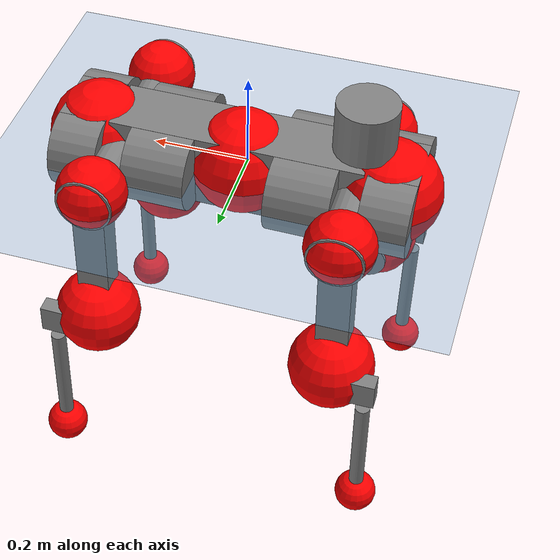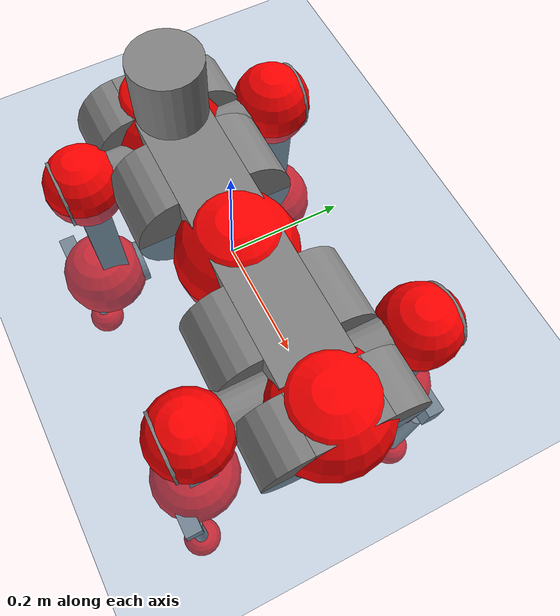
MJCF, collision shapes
<mujoco model="anymal_c">
  <compiler angle="radian" assetdir="assets" balanceinertia="true" inertiafromgeom="false"/>

  <option timestep="0.005" density="1.2" viscosity="2e-05"/>

  <size nkey="1"/>

  <visual>
    <quality shadowsize="8192"/>
    <map shadowclip="0.5"/>
  </visual>

  <default>
    <default class="/">
      <material specular="0" shininess="0.25"/>
      <geom contype="0" conaffinity="0" group="1" solref="-1000 -80"/>
      <site size="0.01 0.005 0.005" group="5"/>
      <general forcelimited="true" forcerange="-80 80" biastype="affine" gainprm="80" biasprm="0 -80 -2"/>
      <default class="anymal_c">
        <joint armature="0.01" damping="0.01" frictionloss="0.1"/>
        <default class="visual">
          <geom type="mesh" group="2"/>
          <default class="visual_zflip"/>
        </default>
        <default class="collision">
          <geom type="cylinder" group="3"/>
          <default class="foot">
            <geom size="0.03 0 0" type="sphere" condim="6" priority="1" friction="0.8 0.02 0.01" solimp="0.015 1 0.03"/>
          </default>
        </default>
      </default>
      <default class="reward_collision_sphere">
        <geom group="5" rgba="1 0 0 1"/>
      </default>
    </default>
  </default>

  <asset>
    <texture type="skybox" colorspace="auto" name="//unnamed_texture_0" builtin="gradient" rgb1="0.95 0.95 0.95" rgb2="0.95 0.95 0.95" width="100" height="600"/>
    <texture type="2d" colorspace="auto" name="texplane" builtin="checker" rgb1="0.345 0.575 0.748" rgb2="0.345 0.575 0.748" markrgb="1 1 1" width="512" height="512"/>
    <texture type="2d" colorspace="linear" name="base" file="base.png"/>
    <texture type="2d" colorspace="linear" name="top_shell" file="top_shell.png"/>
    <texture type="2d" colorspace="linear" name="bottom_shell" file="bottom_shell.png"/>
    <texture type="2d" colorspace="linear" name="remote" file="remote.png"/>
    <texture type="2d" colorspace="linear" name="hatch" file="hatch.png"/>
    <texture type="2d" colorspace="linear" name="handle" file="handle.png"/>
    <texture type="2d" colorspace="linear" name="face" file="face.png"/>
    <texture type="2d" colorspace="linear" name="battery" file="battery.png"/>
    <texture type="2d" colorspace="linear" name="lidar_cage" file="lidar_cage.png"/>
    <texture type="2d" colorspace="linear" name="depth_camera" file="depth_camera.png"/>
    <texture type="2d" colorspace="linear" name="wide_angle_camera" file="wide_angle_camera.png"/>
    <texture type="2d" colorspace="linear" name="lidar" file="lidar.png"/>
    <texture type="2d" colorspace="linear" name="drive" file="drive.png"/>
    <texture type="2d" colorspace="linear" name="hip_l" file="hip_l.png"/>
    <texture type="2d" colorspace="linear" name="shank_l" file="shank_l.png"/>
    <texture type="2d" colorspace="linear" name="foot" file="foot.png"/>
    <texture type="2d" colorspace="linear" name="thigh" file="thigh.png"/>
    <texture type="2d" colorspace="linear" name="shank_r" file="shank_r.png"/>
    <texture type="2d" colorspace="linear" name="hip_r" file="hip_r.png"/>
    <material name="MatPlane" class="/" texture="texplane" texuniform="true" texrepeat="2 2" specular="0.9" shininess="0.5"/>
    <material name="black_plastic" class="/" rgba="0.007 0.007 0.007 1"/>
    <material name="green" class="/" rgba="0.052 0.178 0.033 1"/>
    <material name="red" class="/" rgba="0.178 0.006 0.005 1"/>
    <material name="yellow" class="/" rgba="0.178 0.119 0.006 1"/>
    <material name="lwl" class="/" rgba="0.8 0.8 0.8 1"/>
    <material name="base" class="/" texture="base"/>
    <material name="top_shell" class="/" texture="top_shell"/>
    <material name="bottom_shell" class="/" texture="bottom_shell"/>
    <material name="hip_l" class="/" texture="hip_l"/>
    <material name="thigh" class="/" texture="thigh"/>
    <material name="shank_l" class="/" texture="shank_l"/>
    <material name="foot" class="/" texture="foot"/>
    <material name="hip_r" class="/" texture="hip_r"/>
    <material name="shank" class="/" texture="shank_r"/>
    <material name="hatch" class="/" texture="hatch"/>
    <material name="remote" class="/" texture="remote"/>
    <material name="handle" class="/" texture="handle"/>
    <material name="face" class="/" texture="face"/>
    <material name="depth_camera" class="/" texture="depth_camera"/>
    <material name="wide_angle_camera" class="/" texture="wide_angle_camera"/>
    <material name="battery" class="/" texture="battery"/>
    <material name="lidar_cage" class="/" texture="lidar_cage"/>
    <material name="lidar" class="/" texture="lidar"/>
    <material name="drive" class="/" texture="drive"/>
    <mesh name="base_0" class="/" file="base_0.obj"/>
    <mesh name="base_1" class="/" file="base_1.obj"/>
    <mesh name="base_2" class="/" file="base_2.obj"/>
    <mesh name="base_3" class="/" file="base_3.obj"/>
    <mesh name="base_4" class="/" file="base_4.obj"/>
    <mesh name="base_5" class="/" file="base_5.obj"/>
    <mesh name="top_shell" class="/" file="top_shell.obj"/>
    <mesh name="bottom_shell" class="/" file="bottom_shell.obj"/>
    <mesh name="remote" class="/" file="remote.obj"/>
    <mesh name="handle" class="/" file="handle.obj"/>
    <mesh name="face" class="/" file="face.obj"/>
    <mesh name="wide_angle_camera" class="/" file="wide_angle_camera.obj"/>
    <mesh name="depth_camera" class="/" file="depth_camera.obj"/>
    <mesh name="battery" class="/" file="battery.obj"/>
    <mesh name="lidar_cage" class="/" file="lidar_cage.obj"/>
    <mesh name="lidar" class="/" file="lidar.obj"/>
    <mesh name="drive" class="/" file="drive.obj"/>
    <mesh name="hip_l" class="/" file="hip_l.obj"/>
    <mesh name="thigh" class="/" file="thigh.obj"/>
    <mesh name="shank_l" class="/" file="shank_l.obj"/>
    <mesh name="foot" class="/" file="foot.obj"/>
    <mesh name="hip_r" class="/" file="hip_r.obj"/>
    <mesh name="hatch" class="/" file="hatch.obj"/>
    <mesh name="shank_r" class="/" file="shank_r.obj"/>
  </asset>

  <worldbody>
    <geom name="floor" class="/" size="100 100 0.125" type="plane" group="0" material="MatPlane"/>
    <light name="toplight_shadow" class="/" pos="0 0 5" dir="0.0990148 0.0990148 -0.990148" type="directional" ambient="0.04 0.04 0.04" diffuse="0.55 0.55 0.55" specular="0.12 0.12 0.12"/>
    <light name="toplight_fill" class="/" pos="0 0 5" dir="0.0990148 0.0990148 -0.990148" type="directional" castshadow="false" ambient="0.04 0.04 0.04" diffuse="0.3 0.3 0.3" specular="0.08 0.08 0.08"/>
    <body name="trunk" childclass="anymal_c" pos="0.00909386 0.00499824 0.00132043" quat="0.999995 0.000645878 -0.00295143 -0.0012146">
      <inertial pos="0.0114716 -0.00244387 0.0535462" quat="0.501203 0.494748 0.502427 0.501585" mass="13.971" diaginertia="0.0920019 0.398446 0.356277"/>
      <joint name="//unnamed_joint_0" type="free" armature="0" damping="0" frictionloss="0"/>
      <geom name="//unnamed_geom_1" class="visual" material="green" mesh="base_0"/>
      <geom name="//unnamed_geom_2" class="visual" material="yellow" mesh="base_1"/>
      <geom name="//unnamed_geom_3" class="visual" material="red" mesh="base_2"/>
      <geom name="//unnamed_geom_4" class="visual" material="black_plastic" mesh="base_3"/>
      <geom name="//unnamed_geom_5" class="visual" material="lwl" mesh="base_4"/>
      <geom name="//unnamed_geom_6" class="visual" material="base" mesh="base_5"/>
      <geom name="trunk_1" class="collision" size="0.264104 0.0637491 0.0819632" type="box"/>
      <geom name="trunk_2" class="collision" size="0.0819632 0.0660259" pos="0.148518 0.0641133 0" quat="0.707107 0 0.707107 0"/>
      <geom name="trunk_3" class="collision" size="0.0819632 0.0660259" pos="-0.148518 0.0641133 0" quat="0.707107 0 0.707107 0"/>
      <geom name="trunk_4" class="collision" size="0.0819632 0.0660259" pos="0.148518 -0.0641133 0" quat="0.707107 0 0.707107 0"/>
      <geom name="trunk_5" class="collision" size="0.0819632 0.0660259" pos="-0.148518 -0.0641133 0" quat="0.707107 0 0.707107 0"/>
      <geom name="//unnamed_geom_12" class="visual" material="top_shell" mesh="top_shell"/>
      <geom name="//unnamed_geom_13" class="visual" material="bottom_shell" mesh="bottom_shell"/>
      <geom name="//unnamed_geom_14" class="visual" material="remote" mesh="remote"/>
      <geom name="//unnamed_geom_15" class="visual" material="handle" mesh="handle"/>
      <geom name="//unnamed_geom_16" class="visual" pos="0.283037 0 0" quat="1 0 0 0" material="face" mesh="face"/>
      <geom name="trunk_6" class="collision" size="0.0500886 0.0637491 0.0819632" pos="0.320593 0 0" type="box"/>
      <geom name="//unnamed_geom_18" class="collision" size="0.0819632 0.0500886" pos="0.320593 0.0641133 0" quat="0.707107 0 0.707107 0"/>
      <geom name="//unnamed_geom_19" class="collision" size="0.0819632 0.0500886" pos="0.320593 -0.0641133 0" quat="0.707107 0 0.707107 0"/>
      <geom name="//unnamed_geom_20" class="visual" pos="0.315252 0 -0.0365181" quat="0.965926 0 0.258819 0" material="depth_camera" mesh="depth_camera"/>
      <geom name="//unnamed_geom_21" class="visual" pos="0.350297 0 0.0169664" material="wide_angle_camera" mesh="wide_angle_camera"/>
      <geom name="//unnamed_geom_22" class="visual_zflip" pos="-0.283037 0 0" quat="0 0 0 1" material="face" mesh="face"/>
      <geom name="trunk_7" class="collision" size="0.0500886 0.0637491 0.0819632" pos="-0.320593 0 0" quat="0 0 0 1" type="box"/>
      <geom name="//unnamed_geom_24" class="collision" size="0.0819632 0.0500886" pos="-0.320593 -0.0641133 0" quat="0 -0.707107 0 0.707107"/>
      <geom name="//unnamed_geom_25" class="collision" size="0.0819632 0.0500886" pos="-0.320593 0.0641133 0" quat="0 -0.707107 0 0.707107"/>
      <geom name="//unnamed_geom_26" class="visual" pos="-0.315252 0 -0.0365181" quat="0 -0.258819 0 0.965926" material="depth_camera" mesh="depth_camera"/>
      <geom name="//unnamed_geom_27" class="visual_zflip" pos="-0.350297 0 0.0169664" quat="0 0 0 1" material="wide_angle_camera" mesh="wide_angle_camera"/>
      <geom name="//unnamed_geom_28" class="visual" material="battery" mesh="battery"/>
      <geom name="//unnamed_geom_29" class="visual" pos="0 0.0731071 0.0295002" quat="0.683013 -0.183013 0.183013 0.683013" material="depth_camera" mesh="depth_camera"/>
      <geom name="//unnamed_geom_30" class="visual" pos="0 -0.0731071 0.0295002" quat="0.683013 0.183013 0.183013 -0.683013" material="depth_camera" mesh="depth_camera"/>
      <geom name="//unnamed_geom_31" class="visual" pos="-0.248554 0 0.0833021" quat="1 0 0 0" material="lidar_cage" mesh="lidar_cage"/>
      <geom name="trunk_8" class="collision" size="0.0637491 0.0546421" pos="-0.248554 0 0.151304"/>
      <geom name="//unnamed_geom_33" class="visual" pos="-0.248554 9.1565e-05 0.161164" quat="0.707107 0 0 -0.707107" material="lidar" mesh="lidar"/>
      <geom name="//unnamed_geom_34" class="visual" pos="0.204784 0.0953313 -3.75115e-09" quat="0.258819 0.965926 0 0" material="drive" mesh="drive"/>
      <geom name="//unnamed_geom_35" class="visual" pos="0.204784 -0.0953313 3.75115e-09" quat="0.258819 -0.965926 0 0" material="drive" mesh="drive"/>
      <geom name="//unnamed_geom_36" class="visual" pos="-0.204784 0.0953313 3.75115e-09" quat="0 0 0.965926 -0.258819" material="drive" mesh="drive"/>
      <geom name="//unnamed_geom_37" class="visual" pos="-0.204784 -0.0953313 -3.75115e-09" quat="0 0 -0.965926 -0.258819" material="drive" mesh="drive"/>
      <geom name="//unnamed_geom_38" class="visual" pos="0.0792094 0 0.0827354" quat="1 0 0 0" material="hatch" mesh="hatch"/>
      <geom name="//unnamed_geom_39" class="reward_collision_sphere" size="0.109284"/>
      <geom name="//unnamed_geom_40" class="reward_collision_sphere" size="0.109284" pos="0.307278 0 0"/>
      <geom name="//unnamed_geom_41" class="reward_collision_sphere" size="0.109284" pos="-0.307278 0 0"/>
      <site name="imu" pos="0.178507 0.00267275 0.0521678" size="0.00910702"/>
      <camera name="track" pos="0 -1.83181 0" quat="0.707107 0.707107 0 0" mode="trackcom"/>
      <camera name="ego_camera" pos="0.307278 0 -0.0453345" quat="-0.5 -0.5 0.5 0.5"/>
      <body name="LF_HIP" pos="0.208805 0.0994023 -0.00125109" quat="0.256206 0.966615 0.000158356 0.00367526">
        <inertial pos="0.0487079 -0.0110587 -0.00635057" quat="-0.134672 0.708325 -0.128836 0.680838" mass="1.86693" diaginertia="0.00077544 0.00317862 0.00536133"/>
        <joint name="LF_HAA" pos="0 0 0" axis="0.999965 0.00596223 -0.0059429" stiffness="0.00130801" range="-0.758194 0.636312" armature="0.00646303" damping="0.0285823" frictionloss="0.0834148"/>
        <geom name="//unnamed_geom_42" class="visual" pos="0 -0.000220663 3.62438e-05" quat="0.258819 -0.965926 0 0" material="hip_l" mesh="hip_l"/>
        <geom name="//unnamed_geom_43" class="visual" pos="0.0409021 -0.0527075 -0.0320391" quat="0.183013 -0.683013 0.683013 0.183013" material="drive" mesh="drive"/>
        <geom name="//unnamed_geom_44" class="collision" size="0.0455351 0.0637491" pos="0.0409021 -0.010954 -0.00782586" quat="-0.353553 -0.612372 0.612372 -0.353553"/>
        <body name="LF_THIGH" pos="0.0443385 -0.0646775 -0.0496377" quat="0.18236 -0.683542 0.682547 0.183428">
          <inertial pos="0.0120122 0.00129788 -0.286306" quat="0.99213 -0.00502963 -0.0833782 0.0932811" mass="2.33307" diaginertia="0.00443019 0.0194849 0.00802369"/>
          <joint name="LF_HFE" pos="0 0 0" axis="0.999934 0.0114296 0.00127253" range="-3.00899 3.02181" armature="0.00643787" damping="0.052119" frictionloss="0.0794765"/>
          <geom name="//unnamed_geom_45" class="visual" pos="-0.00463708 -7.30695e-06 0" quat="0.707107 0 0 -0.707107" material="thigh" mesh="thigh"/>
          <geom name="//unnamed_geom_46" class="collision" size="0.0591956 0.0364281" pos="0.0273136 0 0" quat="0.5 0.5 -0.5 -0.5"/>
          <geom name="//unnamed_geom_47" class="collision" size="0.0341513 0.0273211 0.128695" pos="0.0204852 0 -0.16016" quat="0.707107 0 0 -0.707107" type="box"/>
          <geom name="//unnamed_geom_48" class="visual" pos="0.0684888 0 -0.323008" quat="1 0 0 0" material="drive" mesh="drive"/>
          <geom name="//unnamed_geom_49" class="collision" size="0.0455351 0.0637491" pos="0.02069 0 -0.323008" quat="0.707107 0 0.707107 0"/>
          <geom name="//unnamed_geom_50" class="reward_collision_sphere" size="0.0728561" pos="0.017071 0 0"/>
          <body name="LF_SHANK" pos="0.0663872 0.000597495 -0.322216" quat="0.999998 -0.00145779 -0.00159884 0.000338617">
            <inertial pos="9.75161e-05 -0.0589769 -0.0857723" quat="0.991569 -0.125757 -0.0309761 -0.00410023" mass="0.443265" diaginertia="0.00151629 0.00574322 0.00220714"/>
            <joint name="LF_KFE" pos="0 0 0" axis="0.999994 0.00218551 0.00275" range="-3.17818 3.27905" armature="0.010692" damping="0.00724984" frictionloss="0.084152"/>
            <geom name="//unnamed_geom_51" class="visual" pos="-0.00151205 -0.00806233 0" quat="0.707107 0 0 -0.707107" material="shank_l" mesh="shank_l"/>
            <geom name="LF_kfe_act" class="collision" size="0.0546421 0.018214" pos="0.0136568 0 0" quat="0.5 0.5 -0.5 -0.5"/>
            <geom name="//unnamed_geom_53" class="collision" size="0.0523644 0.0307362 0.0173033" pos="0.0136568 -0.0526636 0" quat="0.5 0.5 -0.5 -0.5" type="box"/>
            <geom name="//unnamed_geom_54" class="visual" pos="0.00891142 -0.083152 -0.383042" quat="0.382683 0 0 -0.92388" material="foot" mesh="foot"/>
            <geom name="LF_calf" class="collision" size="0.0159373 0.128638" pos="0.00891106 -0.0805538 -0.191521" quat="0.707107 0 0 -0.707107"/>
            <geom name="LF_foot" class="foot" size="0.028484" pos="0.00891106 -0.0805538 -0.357541" quat="0.707107 0 0 -0.707107"/>
            <geom name="//unnamed_geom_57" class="reward_collision_sphere" size="0.0910702" pos="-0.034142 0 0"/>
            <geom name="//unnamed_geom_58" class="reward_collision_sphere" size="0.0455351" pos="0.00891106 -0.0805538 -0.357541"/>
            <site name="LF_foot" class="foot" pos="0.00891106 -0.0805538 -0.357541" quat="0.707107 0 0 -0.707107" size="0.00910702"/>
          </body>
        </body>
      </body>
      <body name="RF_HIP" pos="0.205583 -0.10232 -0.00188072" quat="0.257835 -0.966189 0.00011493 -0.000634207">
        <inertial pos="0.0325451 0.0142549 -0.00898111" quat="0.140247 0.674136 0.133608 0.712756" mass="1.69719" diaginertia="0.000802283 0.00294973 0.0060742"/>
        <joint name="RF_HAA" pos="0 0 0" axis="0.99999 0.0043709 -0.000933265" range="-0.557908 0.752885" armature="0.0133756" damping="0.00881143" frictionloss="0.0487595"/>
        <geom name="//unnamed_geom_59" class="visual" pos="0 0.000220662 3.62437e-05" quat="0.258819 0.965926 0 0" material="hip_r" mesh="hip_r"/>
        <geom name="//unnamed_geom_60" class="visual" pos="0.0409021 0.0527075 -0.0320391" quat="0.183013 0.683013 0.683013 -0.183013" material="drive" mesh="drive"/>
        <geom name="//unnamed_geom_61" class="collision" size="0.0455351 0.0637491" pos="0.0409021 0.010954 -0.00782586" quat="-0.353553 0.612372 0.612372 0.353553"/>
        <body name="RF_THIGH" pos="0.04376 0.0664838 -0.0551554" quat="0.186344 0.680602 0.684551 -0.182887">
          <inertial pos="0.026333 0.00984108 -0.278415" quat="0.993644 -0.00570461 -0.0760465 0.0828063" mass="2.64544" diaginertia="0.00460416 0.0199561 0.00855565"/>
          <joint name="RF_HFE" pos="0 0 0" axis="0.999959 -0.00744066 -0.0051477" stiffness="0.00996917" range="-3.13651 3.1631" armature="0.00923994" damping="0.0108895" frictionloss="0.0831548"/>
          <geom name="//unnamed_geom_62" class="visual" pos="-0.00463708 -7.30695e-06 0" quat="0.707107 0 0 -0.707107" material="thigh" mesh="thigh"/>
          <geom name="//unnamed_geom_63" class="collision" size="0.0591956 0.0364281" pos="0.0273136 0 0" quat="0.5 0.5 0.5 0.5"/>
          <geom name="//unnamed_geom_64" class="collision" size="0.0341513 0.0273211 0.128695" pos="0.0204852 0 -0.16016" quat="0.707107 0 0 0.707107" type="box"/>
          <geom name="//unnamed_geom_65" class="visual" pos="0.0684888 0 -0.323008" quat="1 0 0 0" material="drive" mesh="drive"/>
          <geom name="//unnamed_geom_66" class="collision" size="0.0455351 0.0637491" pos="0.02069 0 -0.323008" quat="0.707107 0 0.707107 0"/>
          <geom name="//unnamed_geom_67" class="reward_collision_sphere" size="0.0728561" pos="0.017071 0 0"/>
          <body name="RF_SHANK" pos="0.0636967 0.000405616 -0.322117" quat="1 3.65288e-05 -3.1304e-05 0.000188217">
            <inertial pos="0.000894069 0.056191 -0.0913213" quat="0.993426 0.112131 0.00469341 0.0225771" mass="0.407817" diaginertia="0.00125862 0.00581586 0.00196234"/>
            <joint name="RF_KFE" pos="0 0 0" axis="0.999508 -0.031213 -0.00307666" stiffness="0.0169359" range="-3.09565 3.10485" armature="0.0100126" damping="0" frictionloss="0.0924772"/>
            <geom name="//unnamed_geom_68" class="visual" pos="-0.00151204 0.00806231 0" quat="0.707107 0 0 0.707107" material="shank" mesh="shank_r"/>
            <geom name="RF_kfe_act" class="collision" size="0.0546421 0.018214" pos="0.0136568 0 0" quat="0.5 0.5 0.5 0.5"/>
            <geom name="//unnamed_geom_70" class="collision" size="0.0523644 0.0307362 0.0173033" pos="0.0136568 0.0526636 0" quat="0.5 0.5 0.5 0.5" type="box"/>
            <geom name="//unnamed_geom_71" class="visual" pos="0.00891069 0.083152 -0.383042" quat="0.382683 0 0 0.92388" material="foot" mesh="foot"/>
            <geom name="RF_calf" class="collision" size="0.0159373 0.128638" pos="0.00891106 0.0805538 -0.191521" quat="0.707107 0 0 0.707107"/>
            <geom name="RF_foot" class="foot" size="0.0328947" pos="0.00891106 0.0805538 -0.357541" quat="0.707107 0 0 0.707107"/>
            <geom name="//unnamed_geom_74" class="reward_collision_sphere" size="0.0910702" pos="-0.034142 0 0"/>
            <geom name="//unnamed_geom_75" class="reward_collision_sphere" size="0.0455351" pos="0.00891106 0.0805538 -0.357541"/>
            <site name="RF_foot" class="foot" pos="0.00891106 0.0805538 -0.357541" quat="0.707107 0 0 0.707107" size="0.00910702"/>
          </body>
        </body>
      </body>
      <body name="LH_HIP" pos="-0.205305 0.0968137 -0.00346809" quat="-0.00208127 -0.00305486 0.964895 -0.262611">
        <inertial pos="0.0296202 0.0130834 -0.00762267" quat="0.135146 0.678987 0.128011 0.710158" mass="2.16637" diaginertia="0.000889016 0.00302515 0.00627991"/>
        <joint name="LH_HAA" pos="0 0 0" axis="0.999997 -0.00122277 0.00216359" range="-0.514078 0.754663" armature="0.0088505" damping="0.00524266" frictionloss="0.0854735"/>
        <geom name="//unnamed_geom_76" class="visual" pos="0 0.000220662 3.62437e-05" quat="-0.258819 -0.965926 0 0" material="hip_r" mesh="hip_r"/>
        <geom name="//unnamed_geom_77" class="visual" pos="0.0409021 0.0527075 -0.0320391" quat="0.183013 0.683013 0.683013 -0.183013" material="drive" mesh="drive"/>
        <geom name="//unnamed_geom_78" class="collision" size="0.0455351 0.0637491" pos="0.0409021 0.010954 -0.00782586" quat="-0.353553 0.612372 0.612372 0.353553"/>
        <body name="LH_THIGH" pos="0.0493293 0.0647453 -0.053074" quat="0.180157 0.685657 0.681094 -0.183109">
          <inertial pos="0.0196683 -0.0010817 -0.279458" quat="0.987751 -0.0126231 -0.110861 0.109078" mass="2.51576" diaginertia="0.0044785 0.0207047 0.00774869"/>
          <joint name="LH_HFE" pos="0 0 0" axis="0.999825 -0.0169512 0.0078825" stiffness="0.00361012" range="-3.1719 3.1122" armature="0.0109639" damping="0.0521145" frictionloss="0.0949262"/>
          <geom name="//unnamed_geom_79" class="visual" pos="-0.00463708 -7.30695e-06 0" quat="0.707107 0 0 -0.707107" material="thigh" mesh="thigh"/>
          <geom name="//unnamed_geom_80" class="collision" size="0.0591956 0.0364281" pos="0.0273136 0 0" quat="0.5 0.5 -0.5 -0.5"/>
          <geom name="//unnamed_geom_81" class="collision" size="0.0341513 0.0273211 0.128695" pos="0.0204852 0 -0.16016" quat="0.707107 0 0 -0.707107" type="box"/>
          <geom name="//unnamed_geom_82" class="visual" pos="0.0684888 0 -0.323008" quat="1 0 0 0" material="drive" mesh="drive"/>
          <geom name="//unnamed_geom_83" class="collision" size="0.0455351 0.0637491" pos="0.02069 0 -0.323008" quat="0.707107 0 0.707107 0"/>
          <geom name="//unnamed_geom_84" class="reward_collision_sphere" size="0.0728561" pos="0.017071 0 0"/>
          <body name="LH_SHANK" pos="0.0682026 0.000461682 -0.325595" quat="1 -5.8867e-05 -8.13358e-05 0.000186738">
            <inertial pos="0.00357047 0.055907 -0.0948649" quat="0.992998 0.115223 -0.00127672 0.0260147" mass="0.441111" diaginertia="0.0015152 0.00615986 0.00206674"/>
            <joint name="LH_KFE" pos="0 0 0" axis="0.999989 -0.00361173 0.00294959" range="-3.14732 3.13864" armature="0.0102985" damping="0.045152" frictionloss="0.0833726"/>
            <geom name="//unnamed_geom_85" class="visual" pos="-0.00151204 0.00806231 0" quat="-0.707107 0 0 -0.707107" material="shank" mesh="shank_r"/>
            <geom name="LH_kfe_act" class="collision" size="0.0546421 0.018214" pos="0.0136568 0 0" quat="0.5 0.5 -0.5 -0.5"/>
            <geom name="//unnamed_geom_87" class="collision" size="0.0523644 0.0307362 0.0173033" pos="0.0136568 0.0526636 0" quat="0.5 0.5 -0.5 -0.5" type="box"/>
            <geom name="//unnamed_geom_88" class="visual" pos="0.00891069 0.083152 -0.383042" quat="-0.382683 0 0 -0.92388" material="foot" mesh="foot"/>
            <geom name="LH_calf" class="collision" size="0.0159373 0.128638" pos="0.00891106 0.0805538 -0.191521" quat="0.707107 0 0 -0.707107"/>
            <geom name="LH_foot" class="foot" size="0.0224518" pos="0.00891106 0.0805538 -0.357541" quat="0.707107 0 0 -0.707107"/>
            <geom name="//unnamed_geom_91" class="reward_collision_sphere" size="0.0910702" pos="-0.034142 0 0"/>
            <geom name="//unnamed_geom_92" class="reward_collision_sphere" size="0.0455351" pos="0.00891106 0.0805538 -0.357541"/>
            <site name="LH_foot" class="foot" pos="0.00891106 0.0805538 -0.357541" quat="0.707107 0 0 -0.707107" size="0.00910702"/>
          </body>
        </body>
      </body>
      <body name="RH_HIP" pos="-0.208102 -0.086576 -0.00650363" quat="-0.00067229 0.00182793 -0.965487 -0.260442">
        <inertial pos="0.0390387 -0.020275 -0.00967934" quat="-0.143291 0.697837 -0.1707 0.6807" mass="2.04546" diaginertia="0.000815149 0.00294781 0.00614144"/>
        <joint name="RH_HAA" pos="0 0 0" axis="0.99999 0.00302216 0.00333557" range="-0.697648 0.51917" armature="0.00462863" damping="0" frictionloss="0.124768"/>
        <geom name="//unnamed_geom_93" class="visual" pos="0 -0.000220663 3.62438e-05" quat="-0.258819 0.965926 0 0" material="hip_l" mesh="hip_l"/>
        <geom name="//unnamed_geom_94" class="visual" pos="0.0409021 -0.0527075 -0.0320391" quat="-0.183013 0.683013 -0.683013 -0.183013" material="drive" mesh="drive"/>
        <geom name="//unnamed_geom_95" class="collision" size="0.0455351 0.0637491" pos="0.0409021 -0.010954 -0.00782586" quat="0.353553 0.612372 -0.612372 0.353553"/>
        <body name="RH_THIGH" pos="0.043945 -0.0680272 -0.0406353" quat="-0.182977 0.683581 -0.682326 -0.183487">
          <inertial pos="0.0223003 0.00243354 -0.276238" quat="0.993301 -0.00353975 -0.0780379 0.0851527" mass="2.42156" diaginertia="0.00464438 0.019331 0.008733"/>
          <joint name="RH_HFE" pos="0 0 0" axis="0.999985 -0.00148893 -0.0052334" stiffness="0.0233222" range="-2.97755 3.06355" armature="0.00775556" damping="0.000706411" frictionloss="0.0903935"/>
          <geom name="//unnamed_geom_96" class="visual" pos="-0.00463708 -7.30695e-06 0" quat="0.707107 0 0 -0.707107" material="thigh" mesh="thigh"/>
          <geom name="//unnamed_geom_97" class="collision" size="0.0591956 0.0364281" pos="0.0273136 0 0" quat="0.5 0.5 0.5 0.5"/>
          <geom name="//unnamed_geom_98" class="collision" size="0.0341513 0.0273211 0.128695" pos="0.0204852 0 -0.16016" quat="0.707107 0 0 0.707107" type="box"/>
          <geom name="//unnamed_geom_99" class="visual" pos="0.0684888 0 -0.323008" quat="1 0 0 0" material="drive" mesh="drive"/>
          <geom name="//unnamed_geom_100" class="collision" size="0.0455351 0.0637491" pos="0.02069 0 -0.323008" quat="0.707107 0 0.707107 0"/>
          <geom name="//unnamed_geom_101" class="reward_collision_sphere" size="0.0728561" pos="0.017071 0 0"/>
          <body name="RH_SHANK" pos="0.0796517 -0.00563672 -0.3202" quat="1 0.000419777 -0.000389615 1.34388e-05">
            <inertial pos="-0.00666515 -0.0563478 -0.0946325" quat="0.993206 -0.11262 -0.0056915 -0.0287597" mass="0.434962" diaginertia="0.00162025 0.00710231 0.00220662"/>
            <joint name="RH_KFE" pos="0 0 0" axis="0.999989 0.00471219 0.00034126" range="-3.24622 2.92595" armature="0.0121579" damping="0.0141192" frictionloss="0.091083"/>
            <geom name="//unnamed_geom_102" class="visual" pos="-0.00151205 -0.00806233 0" quat="0.707107 0 0 -0.707107" material="shank_l" mesh="shank_l"/>
            <geom name="RH_kfe_act" class="collision" size="0.0546421 0.018214" pos="0.0136568 0 0" quat="0.5 0.5 0.5 0.5"/>
            <geom name="//unnamed_geom_104" class="collision" size="0.0523644 0.0307362 0.0173033" pos="0.0136568 -0.0526636 0" quat="0.5 0.5 0.5 0.5" type="box"/>
            <geom name="//unnamed_geom_105" class="visual" pos="0.00891142 -0.083152 -0.383042" quat="0.382683 0 0 -0.92388" material="foot" mesh="foot"/>
            <geom name="RH_calf" class="collision" size="0.0159373 0.128638" pos="0.00891106 -0.0805538 -0.191521" quat="0.707107 0 0 0.707107"/>
            <geom name="RH_foot" class="foot" size="0.0289325" pos="0.00891106 -0.0805538 -0.357541" quat="0.707107 0 0 0.707107"/>
            <geom name="//unnamed_geom_108" class="reward_collision_sphere" size="0.0910702" pos="-0.034142 0 0"/>
            <geom name="//unnamed_geom_109" class="reward_collision_sphere" size="0.0455351" pos="0.00891106 -0.0805538 -0.357541"/>
            <site name="RH_foot" class="foot" pos="0.00891106 -0.0805538 -0.357541" quat="0.707107 0 0 0.707107" size="0.00910702"/>
          </body>
        </body>
      </body>
    </body>
  </worldbody>

  <contact>
    <pair class="/" geom1="floor" geom2="LF_foot" name="//unnamed_contact_0"/>
    <pair class="/" geom1="floor" geom2="RF_foot" name="//unnamed_contact_1"/>
    <pair class="/" geom1="floor" geom2="LH_foot" name="//unnamed_contact_2"/>
    <pair class="/" geom1="floor" geom2="RH_foot" name="//unnamed_contact_3"/>
  </contact>

  <actuator>
    <general name="LF_HAA" class="/" joint="LF_HAA" forcerange="-70.4457 70.4457" gainprm="71.9835" biasprm="0 -71.9835 -2.05949"/>
    <general name="LF_HFE" class="/" joint="LF_HFE" forcerange="-80.704 80.704" gainprm="71.9835" biasprm="0 -71.9835 -2.05949"/>
    <general name="LF_KFE" class="/" joint="LF_KFE" forcerange="-71.9082 71.9082" gainprm="71.9835" biasprm="0 -71.9835 -2.05949"/>
    <general name="RF_HAA" class="/" joint="RF_HAA" forcerange="-45.2824 45.2824" gainprm="71.9835" biasprm="0 -71.9835 -2.05949"/>
    <general name="RF_HFE" class="/" joint="RF_HFE" forcerange="-77.4306 77.4306" gainprm="71.9835" biasprm="0 -71.9835 -2.05949"/>
    <general name="RF_KFE" class="/" joint="RF_KFE" forcerange="-88.2347 88.2347" gainprm="71.9835" biasprm="0 -71.9835 -2.05949"/>
    <general name="LH_HAA" class="/" joint="LH_HAA" forcerange="-69.4446 69.4446" gainprm="71.9835" biasprm="0 -71.9835 -2.05949"/>
    <general name="LH_HFE" class="/" joint="LH_HFE" forcerange="-69.5082 69.5082" gainprm="71.9835" biasprm="0 -71.9835 -2.05949"/>
    <general name="LH_KFE" class="/" joint="LH_KFE" forcerange="-79.7266 79.7266" gainprm="71.9835" biasprm="0 -71.9835 -2.05949"/>
    <general name="RH_HAA" class="/" joint="RH_HAA" forcerange="-78.1253 78.1253" gainprm="71.9835" biasprm="0 -71.9835 -2.05949"/>
    <general name="RH_HFE" class="/" joint="RH_HFE" forcerange="-74.4129 74.4129" gainprm="71.9835" biasprm="0 -71.9835 -2.05949"/>
    <general name="RH_KFE" class="/" joint="RH_KFE" forcerange="-50.71 50.71" gainprm="71.9835" biasprm="0 -71.9835 -2.05949"/>
  </actuator>

  <sensor>
    <gyro site="imu" name="imu_angular_velocity"/>
    <velocimeter site="imu" name="imu_linear_velocity"/>
    <framelinvel objtype="site" objname="LF_foot" name="LF_foot_global_linear_velocity"/>
    <framelinvel objtype="site" objname="RF_foot" name="RF_foot_global_linear_velocity"/>
    <framelinvel objtype="site" objname="LH_foot" name="LH_foot_global_linear_velocity"/>
    <framelinvel objtype="site" objname="RH_foot" name="RH_foot_global_linear_velocity"/>
  </sensor>

  <keyframe>
    <key name="home" qpos="0 0 0.55 1 0 0 0 0 0.4 -0.8 0 -0.4 0.8 0 -0.4 0.8 0 0.4 -0.8"/>
  </keyframe>
</mujoco>
